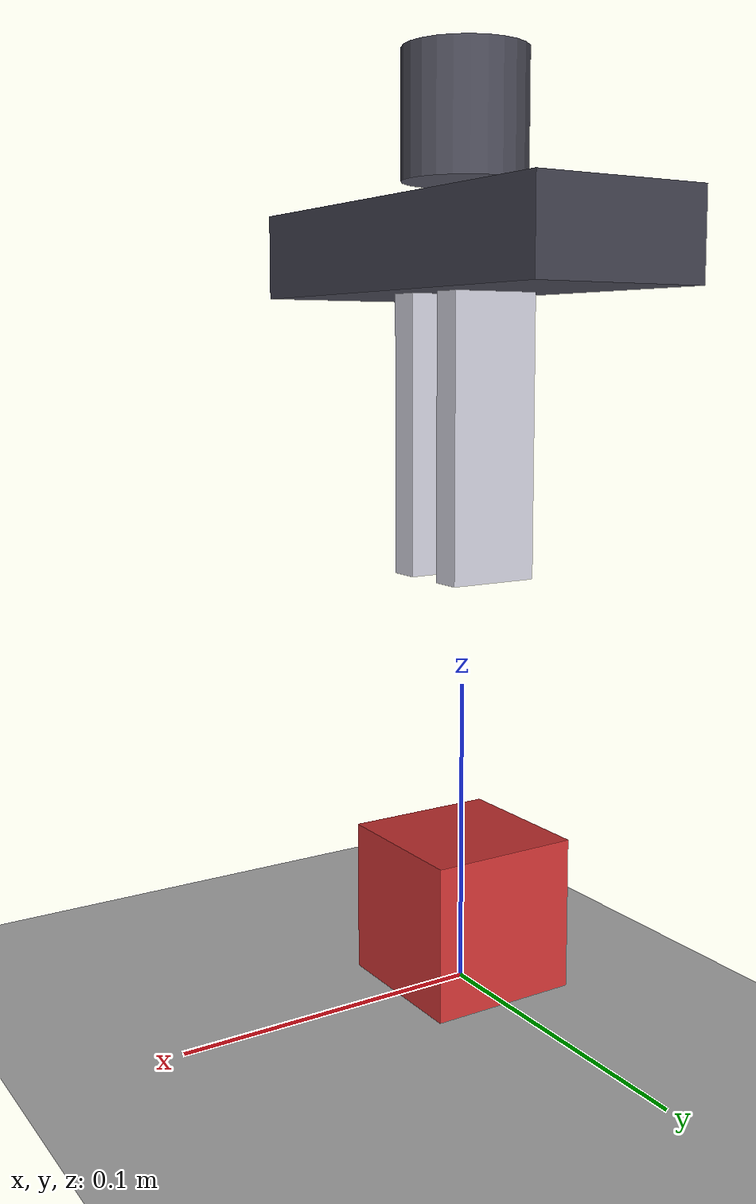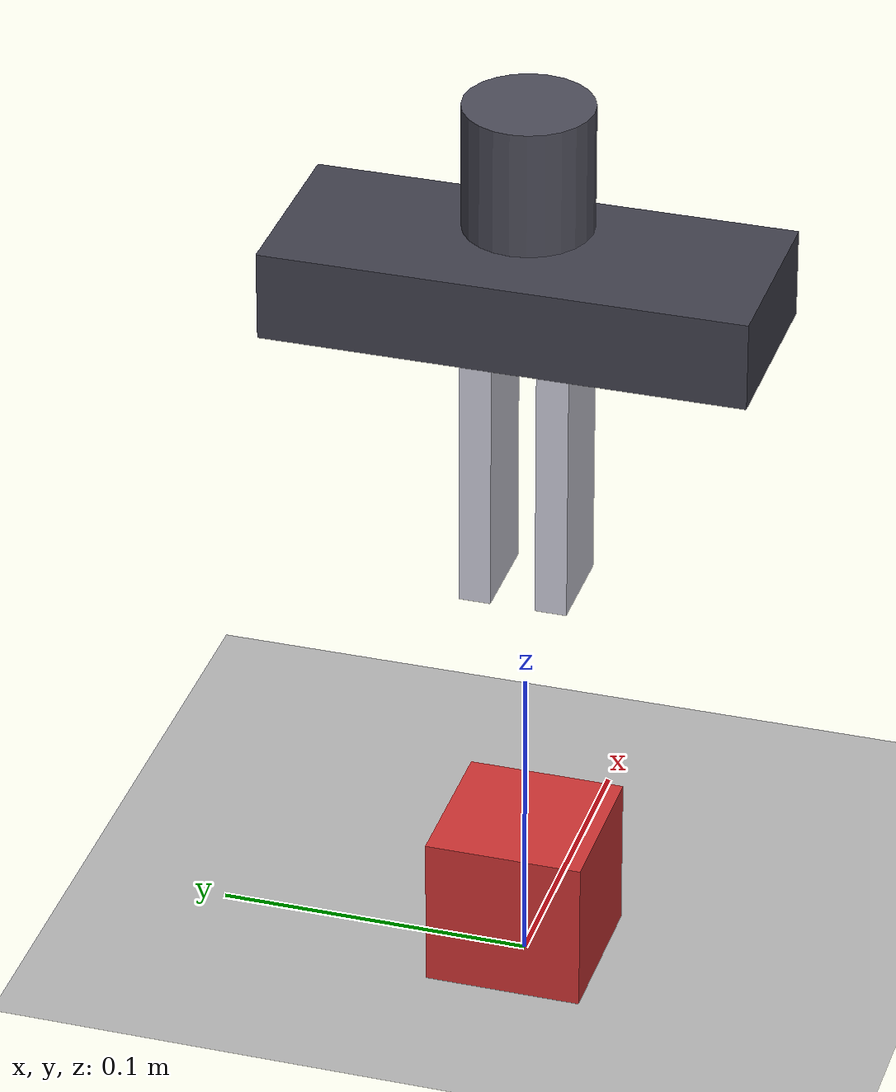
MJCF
<mujoco model="parallel_jaw_gripper">
  <option impratio="10" cone="elliptic"/>

  <worldbody>
    <geom name="table" size="0.5 0.5 0.01" type="plane" rgba="0.7 0.7 0.7 1"/>
    <!-- Same flipped-base convention as the Shadow scene: positive slide_z lowers the palm. -->
    <body name="g_base" pos="0 0 0.30" quat="0 1 0 0" gravcomp="1">
      <inertial pos="0 0 0.02" mass="1.5" diaginertia="0.004 0.004 0.003"/>
      <joint name="slide_x" pos="0 0 0" axis="1 0 0" type="slide" range="-0.3 0.3" armature="0.5" damping="60" frictionloss="0"/>
      <joint name="slide_y" pos="0 0 0" axis="0 1 0" type="slide" range="-0.3 0.3" armature="0.5" damping="60" frictionloss="0"/>
      <joint name="slide_z" pos="0 0 0" axis="0 0 1" type="slide" range="-0.15 0.2" armature="0.5" damping="60" frictionloss="0"/>
      <geom name="g_mount" type="cylinder" size="0.02 0.02" pos="0 0 0.02" rgba="0.3 0.3 0.35 1"/>
      <body name="g_palm" pos="0 0 0.06" gravcomp="1">
        <inertial pos="0 0 0" mass="0.4" diaginertia="0.0004 0.0004 0.0004"/>
        <geom name="g_palm_geom" type="box" size="0.030 0.075 0.014" rgba="0.25 0.25 0.3 1"/>
        <site name="grasp_site" pos="0 0 0.075" group="4"/>
        <body name="g_left_finger" pos="0 0.012 0.014" gravcomp="1">
          <inertial pos="0 0 0.04" mass="0.08" diaginertia="6e-05 6e-05 1e-05"/>
          <joint name="g_left_joint" pos="0 0 0" axis="0 1 0" type="slide" range="0 0.06" damping="8" armature="0.05"/>
          <geom name="g_left_pad" type="box" size="0.015 0.005 0.045" pos="0 0 0.045"
                condim="4" friction="1.5 0.05 0.001" solref="0.005" solimp="0.5 0.99 0.0001" rgba="0.8 0.8 0.85 1"/>
        </body>
        <body name="g_right_finger" pos="0 -0.012 0.014" gravcomp="1">
          <inertial pos="0 0 0.04" mass="0.08" diaginertia="6e-05 6e-05 1e-05"/>
          <joint name="g_right_joint" pos="0 0 0" axis="0 -1 0" type="slide" range="0 0.06" damping="8" armature="0.05"/>
          <geom name="g_right_pad" type="box" size="0.015 0.005 0.045" pos="0 0 0.045"
                condim="4" friction="1.5 0.05 0.001" solref="0.005" solimp="0.5 0.99 0.0001" rgba="0.8 0.8 0.85 1"/>
        </body>
      </body>
    </body>
    <body name="object" pos="0 0 0.025">
      <joint type="free"/>
      <geom name="cube" size="0.025 0.025 0.025" type="box" condim="4" friction="1 0.05 0.001" mass="0.05" rgba="0.8 0.2 0.2 1"/>
    </body>
  </worldbody>

  <actuator>
    <general name="g_left" joint="g_left_joint" ctrllimited="true" ctrlrange="0 0.06" forcelimited="true" forcerange="-25 25" biastype="affine" gainprm="120" biasprm="0 -120"/>
    <general name="g_right" joint="g_right_joint" ctrllimited="true" ctrlrange="0 0.06" forcelimited="true" forcerange="-25 25" biastype="affine" gainprm="120" biasprm="0 -120"/>
    <general name="base_x" joint="slide_x" ctrllimited="true" ctrlrange="-0.3 0.3" forcelimited="true" forcerange="-50 50" biastype="affine" gainprm="500" biasprm="0 -500"/>
    <general name="base_y" joint="slide_y" ctrllimited="true" ctrlrange="-0.3 0.3" forcelimited="true" forcerange="-50 50" biastype="affine" gainprm="500" biasprm="0 -500"/>
    <general name="base_z" joint="slide_z" ctrllimited="true" ctrlrange="-0.15 0.2" forcelimited="true" forcerange="-50 50" biastype="affine" gainprm="1000" biasprm="0 -1000"/>
  </actuator>
</mujoco>
